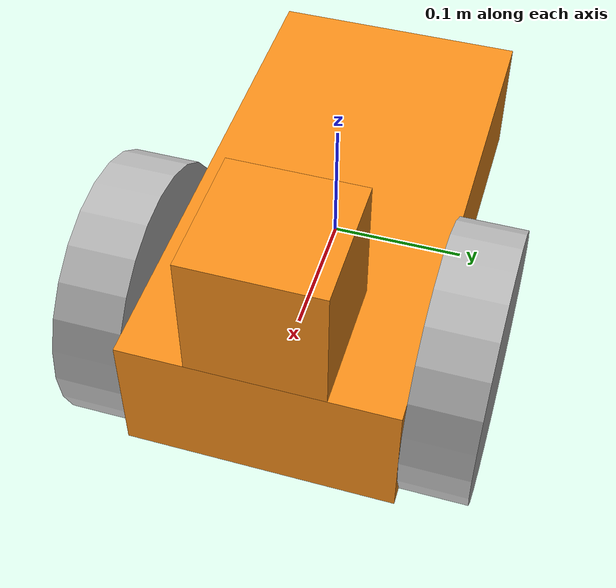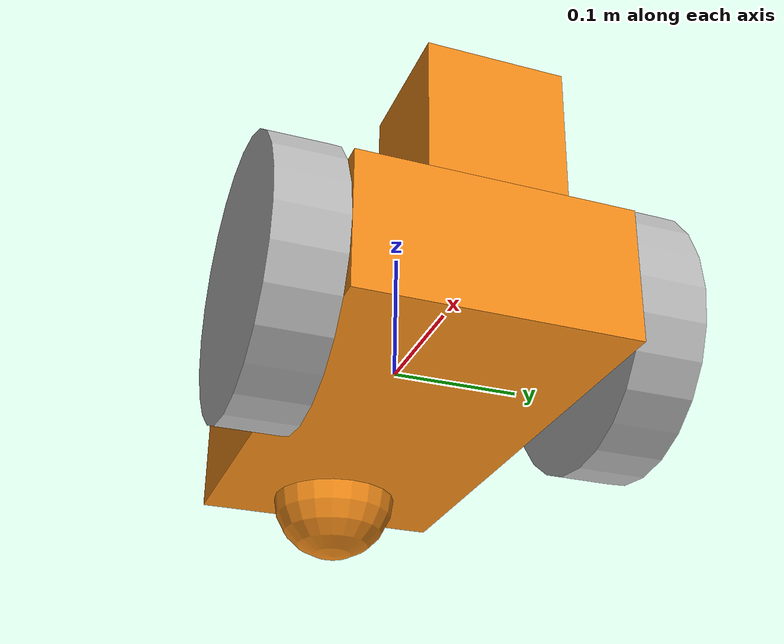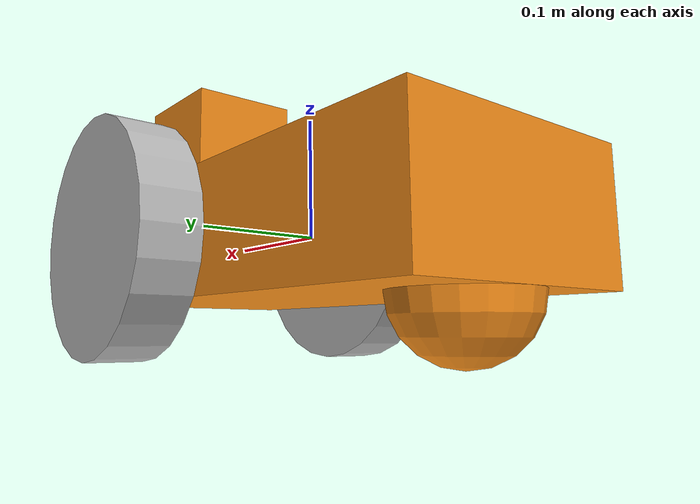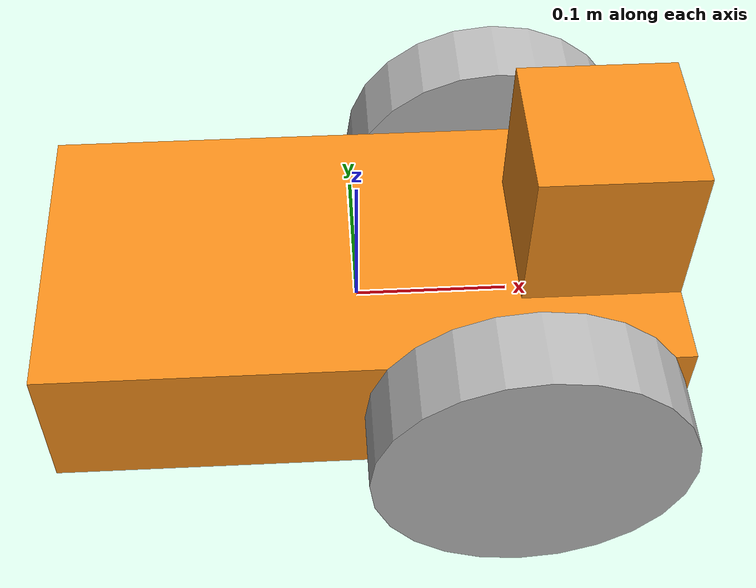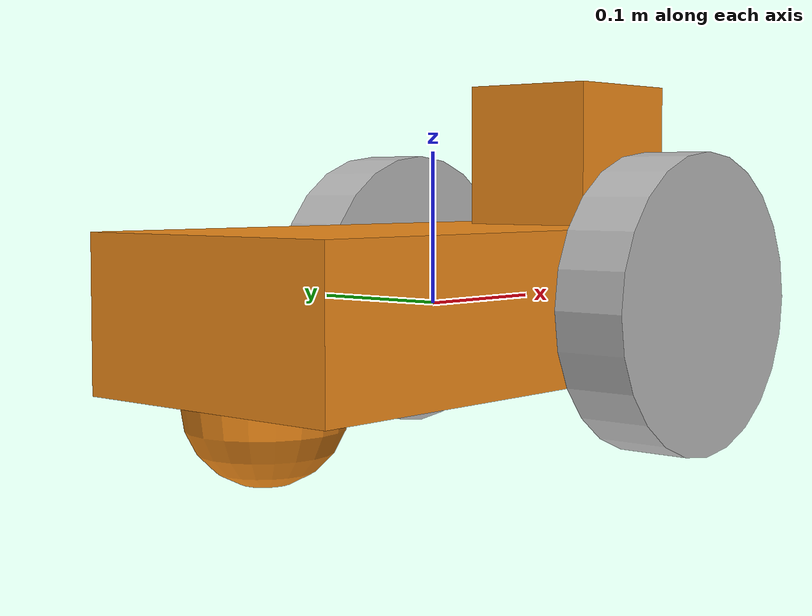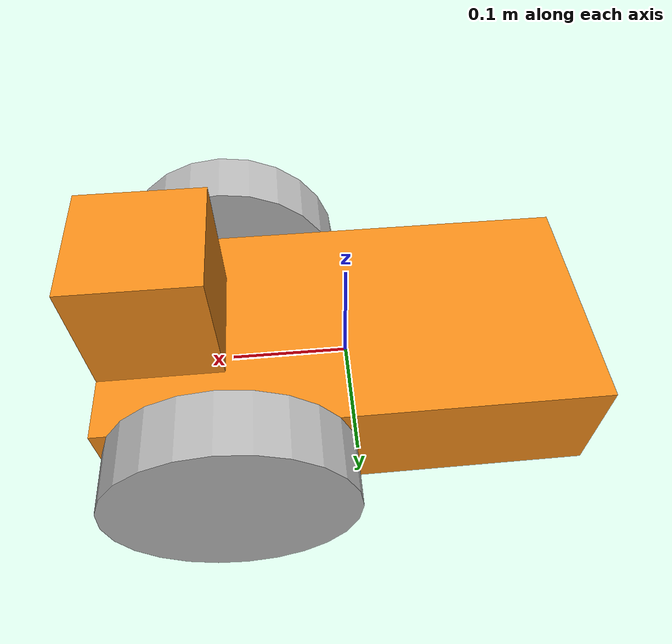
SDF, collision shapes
<?xml version="1.0" ?>
<sdf version='1.4'>
  <model name='my_robot'>
    <link name='chassis'>
      <pose>0 0 0 0 -0 0</pose>
      <inertial>
        <pose>1.5e-07 0 0.1 0 -0 0</pose>
        <mass>10</mass>
        <inertia>
          <ixx>0.500001</ixx>
          <ixy>0</ixy>
          <ixz>-2.64698e-23</ixz>
          <iyy>1</iyy>
          <iyz>0</iyz>
          <izz>0.100001</izz>
        </inertia>
      </inertial>
      <collision name='chassis_collision'>
        <pose>0 0 0 0 -0 0</pose>
        <geometry>
          <box>
            <size>0.4 0.2 0.1</size>
          </box>
        </geometry>
        <surface>
          <contact>
            <ode/>
          </contact>
          <friction>
            <ode/>
          </friction>
        </surface>
      </collision>
      <collision name='chassis_collision_chassis_1'>
        <pose>-0.15 0 -0.05 0 -0 0</pose>
        <geometry>
          <sphere>
            <radius>0.05</radius>
          </sphere>
        </geometry>
        <surface>
          <contact>
            <ode/>
          </contact>
          <friction>
            <ode/>
          </friction>
        </surface>
      </collision>
      <collision name='chassis_collision_hokuyo'>
        <pose>0.15 0 0.1 0 -0 0</pose>
        <geometry>
          <box>
            <size>0.1 0.1 0.1</size>
          </box>
        </geometry>
        <surface>
          <contact>
            <ode/>
          </contact>
          <friction>
            <ode/>
          </friction>
        </surface>
      </collision>
      <visual name='chassis_visual'>
        <pose>0 0 0 0 -0 0</pose>
        <geometry>
          <box>
            <size>0.4 0.2 0.1</size>
          </box>
        </geometry>
        <material>
          <script>
            <name>Gazebo/Orange</name>
            <uri>__default__</uri>
          </script>
        </material>
      </visual>
      <visual name='chassis_visual_chassis_1'>
        <pose>-0.15 0 -0.05 0 -0 0</pose>
        <geometry>
          <sphere>
            <radius>0.05</radius>
          </sphere>
        </geometry>
        <material>
          <script>
            <name>Gazebo/Orange</name>
            <uri>__default__</uri>
          </script>
        </material>
      </visual>
      <visual name='chassis_visual_hokuyo'>
        <pose>0.15 0 0.1 0 -0 0</pose>
        <geometry>
          <mesh>
            <scale>1 1 1</scale>
            <uri>model://myrobot_description/meshes/hokuyo_utm30lx/hokuyo_utm_30lx.dae</uri>
          </mesh>
        </geometry>
      </visual>
      <gravity>1</gravity>
      <velocity_decay>
        <linear>0</linear>
        <angular>0</angular>
      </velocity_decay>
      <self_collide>0</self_collide>
    </link>
    <link name='left_wheel'>
      <pose>0.1 0.125 0 0 -0 0</pose>
      <inertial>
        <pose>0 0 0 0 1.5707 1.5707</pose>
        <mass>5</mass>
        <inertia>
          <ixx>1</ixx>
          <ixy>0</ixy>
          <ixz>0</ixz>
          <iyy>1</iyy>
          <iyz>0</iyz>
          <izz>1</izz>
        </inertia>
      </inertial>
      <collision name='left_wheel_collision'>
        <pose>0 0 0 0 1.5707 1.5707</pose>
        <geometry>
          <cylinder>
            <length>0.05</length>
            <radius>0.1</radius>
          </cylinder>
        </geometry>
      </collision>
      <visual name='left_wheel_visual'>
        <pose>0 0 0 0 1.5707 1.5707</pose>
        <geometry>
          <cylinder>
            <length>0.05</length>
            <radius>0.1</radius>
          </cylinder>
        </geometry>
      </visual>
      <velocity_decay>
        <linear>0</linear>
        <angular>0</angular>
      </velocity_decay>
    </link>
    <joint name='left_wheel_hinge' type='revolute'>
      <child>left_wheel</child>
      <parent>chassis</parent>
      <axis>
        <xyz>0 1 0</xyz>
        <limit>
          <lower>-1e+16</lower>
          <upper>1e+16</upper>
        </limit>
        <dynamics/>
      </axis>
    </joint>
    <link name='right_wheel'>
      <pose>0.1 -0.125 0 0 -0 0</pose>
      <inertial>
        <pose>0 0 0 0 1.5707 1.5707</pose>
        <mass>5</mass>
        <inertia>
          <ixx>1</ixx>
          <ixy>0</ixy>
          <ixz>0</ixz>
          <iyy>1</iyy>
          <iyz>0</iyz>
          <izz>1</izz>
        </inertia>
      </inertial>
      <collision name='right_wheel_collision'>
        <pose>0 0 0 0 1.5707 1.5707</pose>
        <geometry>
          <cylinder>
            <length>0.05</length>
            <radius>0.1</radius>
          </cylinder>
        </geometry>
      </collision>
      <visual name='right_wheel_visual'>
        <pose>0 0 0 0 1.5707 1.5707</pose>
        <geometry>
          <cylinder>
            <length>0.05</length>
            <radius>0.1</radius>
          </cylinder>
        </geometry>
      </visual>
      <velocity_decay>
        <linear>0</linear>
        <angular>0</angular>
      </velocity_decay>
    </link>
    <joint name='right_wheel_hinge' type='revolute'>
      <child>right_wheel</child>
      <parent>chassis</parent>
      <axis>
        <xyz>0 1 0</xyz>
        <limit>
          <lower>-1e+16</lower>
          <upper>1e+16</upper>
        </limit>
        <dynamics/>
      </axis>
    </joint>
    <static>0</static>
    <plugin name='differential_drive_controller' filename='libgazebo_ros_diff_drive.so'>
      <legacyMode>false</legacyMode>
      <alwaysOn>true</alwaysOn>
      <updateRate>20</updateRate>
      <leftJoint>left_wheel_hinge</leftJoint>
      <rightJoint>right_wheel_hinge</rightJoint>
      <wheelSeparation>0.4</wheelSeparation>
      <wheelDiameter>0.1</wheelDiameter>
      <torque>20</torque>
      <commandTopic>cmd_vel</commandTopic>
      <odometryTopic>odom</odometryTopic>
      <odometryFrame>odom</odometryFrame>
      <robotBaseFrame>chassis</robotBaseFrame>
    </plugin>
  </model>
</sdf>
